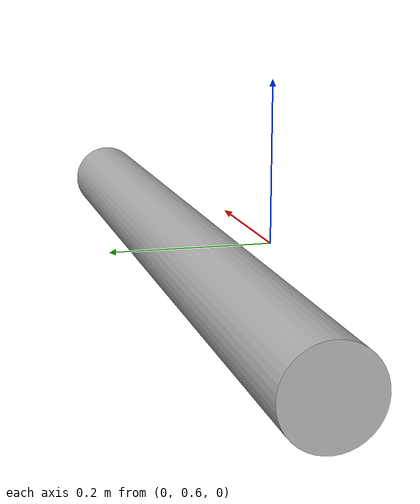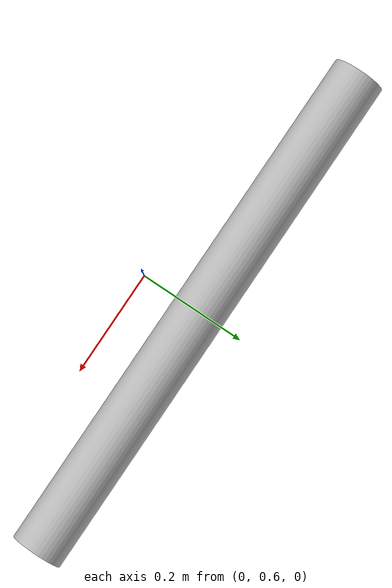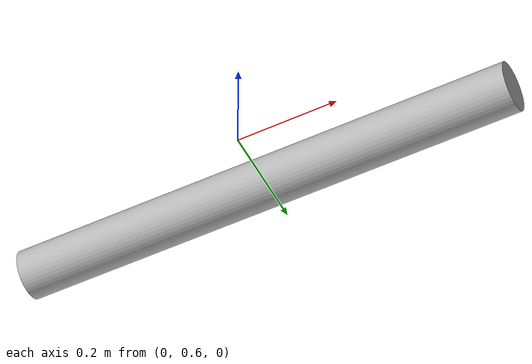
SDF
<?xml version="1.0" ?>
<sdf version="1.6">
  <model name="rails2">
    <static>true</static>
    <link name="link">
      <visual name="visual">
        <geometry>
          <mesh>
            <uri>model://amp_axle_only/amp_axle_only.obj</uri>
            <scale>1 1 1</scale>
          </mesh>
        </geometry>
      </visual>
      <collision name="collision">
        <geometry>
          <mesh>
            <uri>model://amp_axle_only/amp_axle_only.obj</uri>
          </mesh>
        </geometry>
      </collision>
    </link>
  </model>
</sdf>
